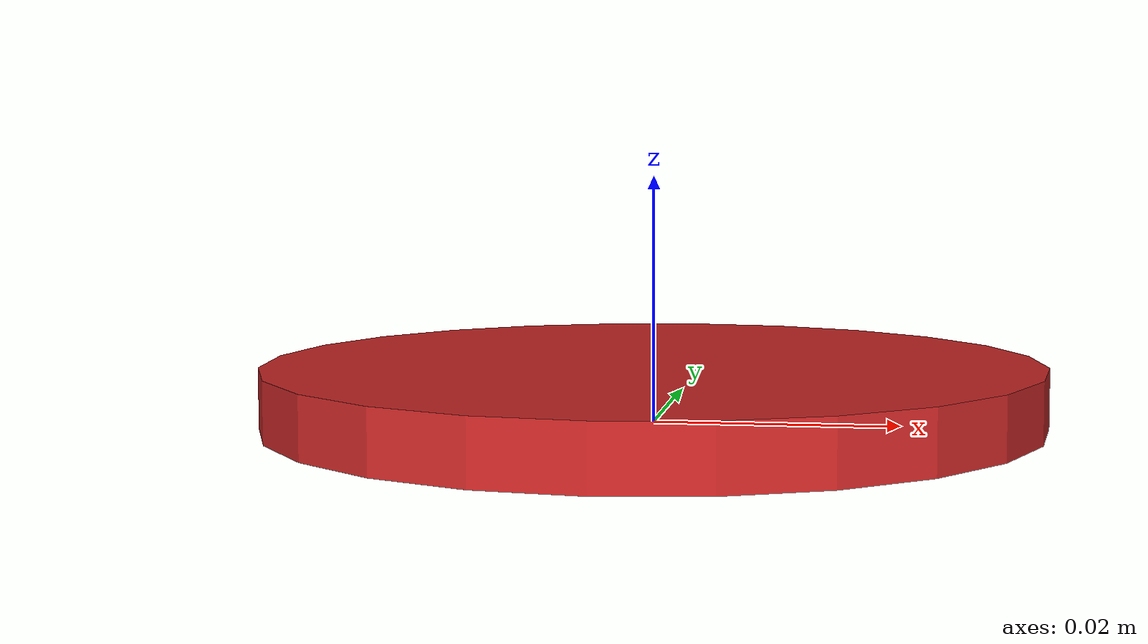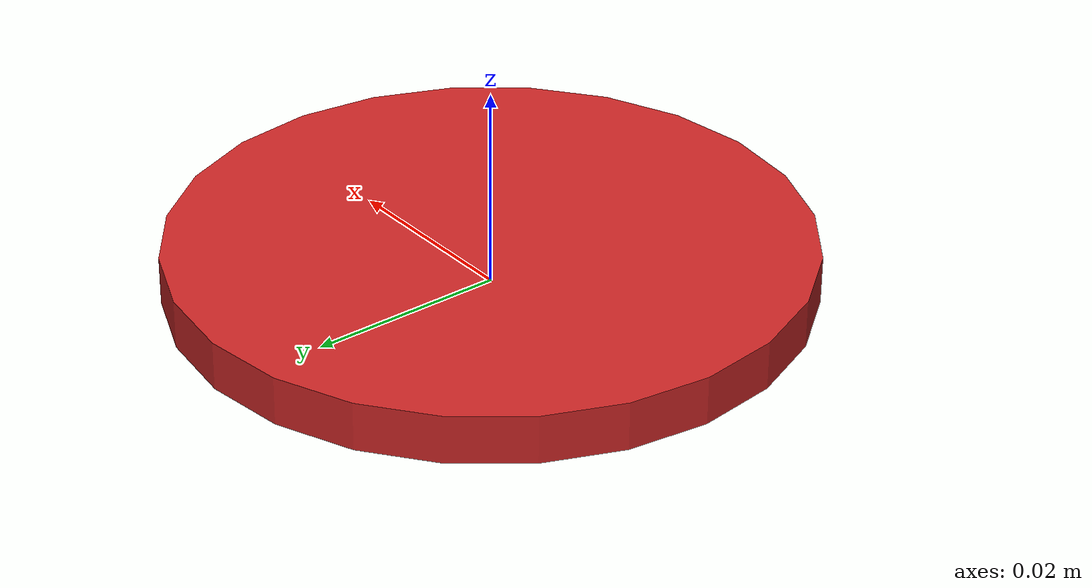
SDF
<?xml version="1.0" ?>
<sdf version="1.7">
  <model name="puck">
    <link name="Puck">
      <inertial>
        <pose>0 0 0.00245 0 -0 0</pose>
        <mass>0.01</mass>
        <inertia>
          <ixx>0.01</ixx>
          <ixy>0</ixy>
          <ixz>0</ixz>
          <iyy>0.01</iyy>
          <iyz>0</iyz>
          <izz>5e-06</izz>
        </inertia>
      </inertial>
      <collision name="Puck_link_collision">
        <pose>0 0 0.00245 0 -0 0</pose>
        <geometry>
          <cylinder>
            <length>0.0049</length>
            <radius>0.03165</radius>
          </cylinder>
        </geometry>
        <surface>
          <bounce>
            <restitution_coefficient>1</restitution_coefficient>
            <threshold>0</threshold>
          </bounce>
          <friction>
            <torsional>
              <coefficient>9.11914e-08</coefficient>
              <use_patch_radius>1</use_patch_radius>
              <patch_radius>0.03165</patch_radius>
            </torsional>
            <ode>
              <mu>1</mu>
              <mu2>1</mu2>
            </ode>
          </friction>
          <contact>
            <collide_bitmask>3</collide_bitmask>
            <ode>
              <kp>1e+09</kp>
              <max_vel>20</max_vel>
            </ode>
          </contact>
        </surface>
      </collision>
      <visual name="Puck_link_visual">
        <pose>0 0 0.00245 0 -0 0</pose>
        <geometry>
          <cylinder>
            <length>0.0049</length>
            <radius>0.03165</radius>
          </cylinder>
        </geometry>
        <material>
          <script>
            <name>Gazebo/Red</name>
            <uri>file://media/materials/scripts/gazebo.material</uri>
          </script>
        </material>
      </visual>
      <gravity>1</gravity>
      <velocity_decay>
        <linear>0.000456472</linear>
        <angular>0.000170463</angular>
      </velocity_decay>
    </link>
    <static>0</static>
    <plugin filename="libpuck_tf_plugin.so" name="puck_tf_plugin"/>
    <updateRate>500.0</updateRate>
  </model>
</sdf>
